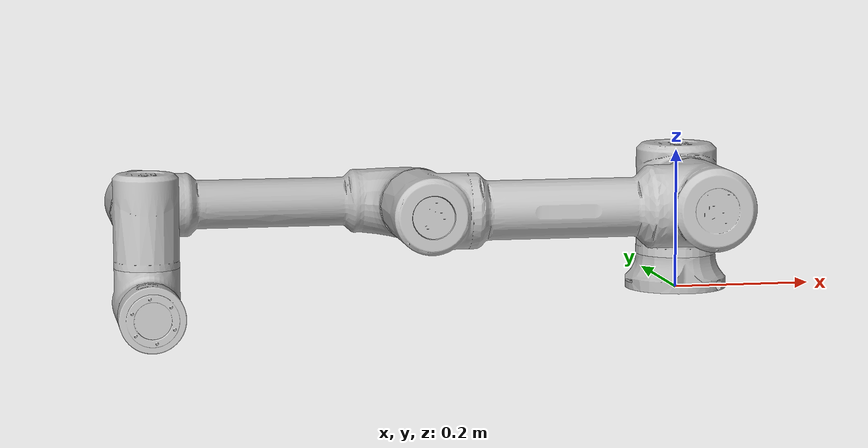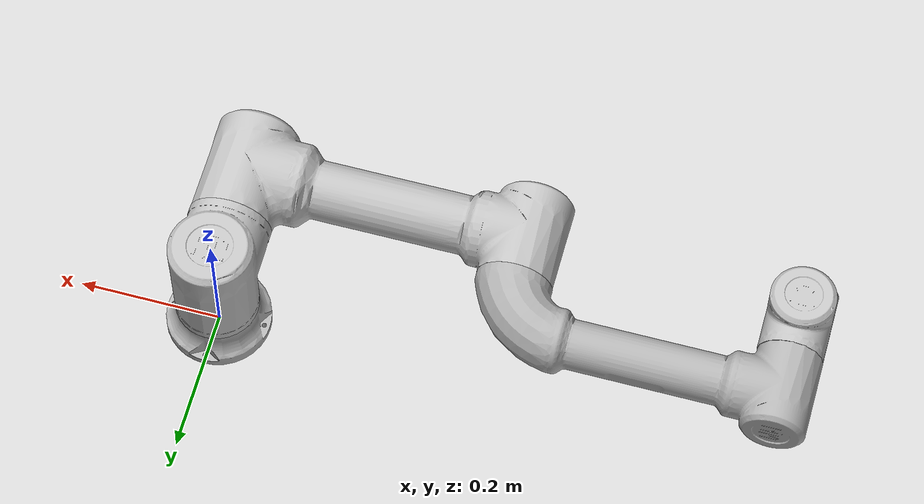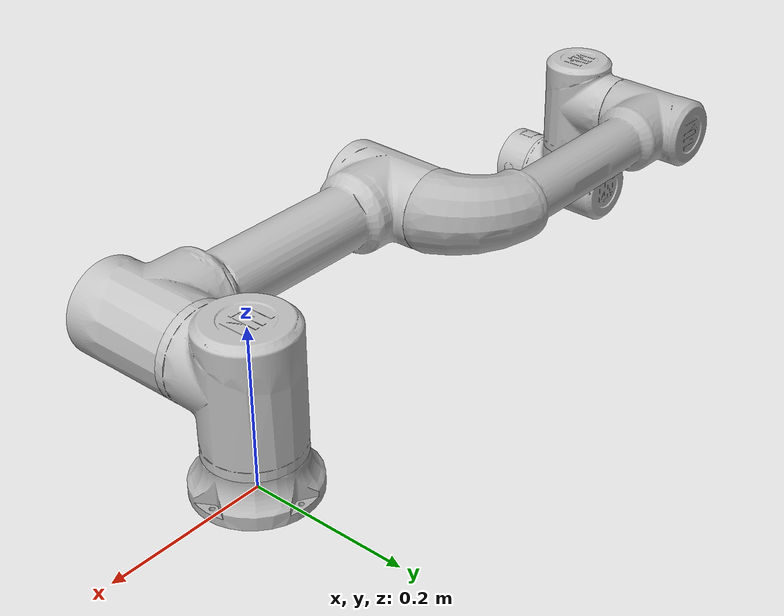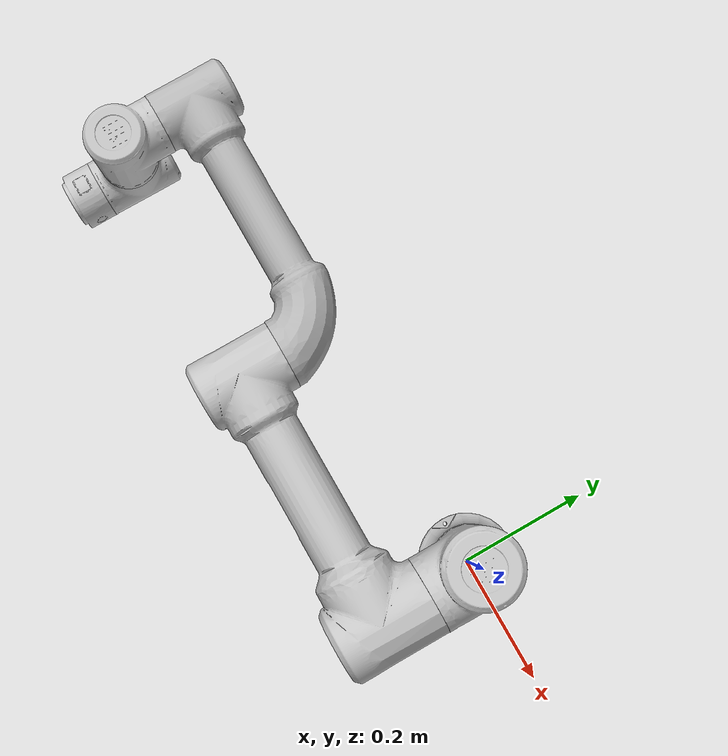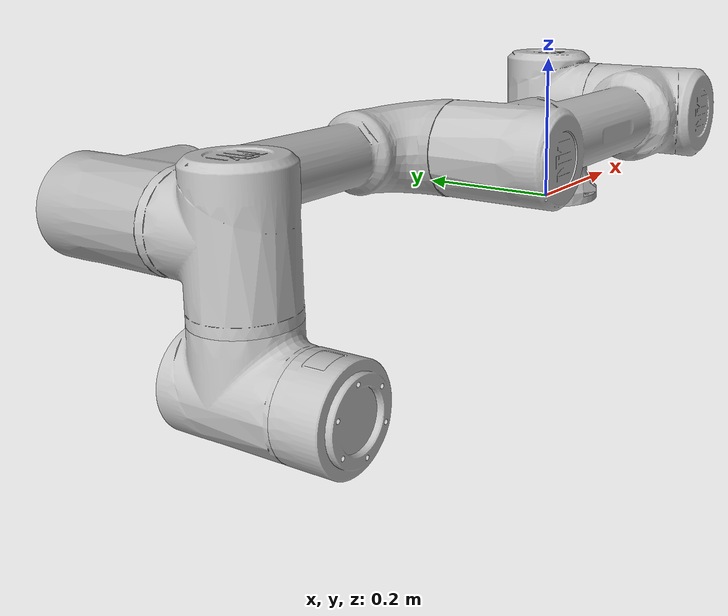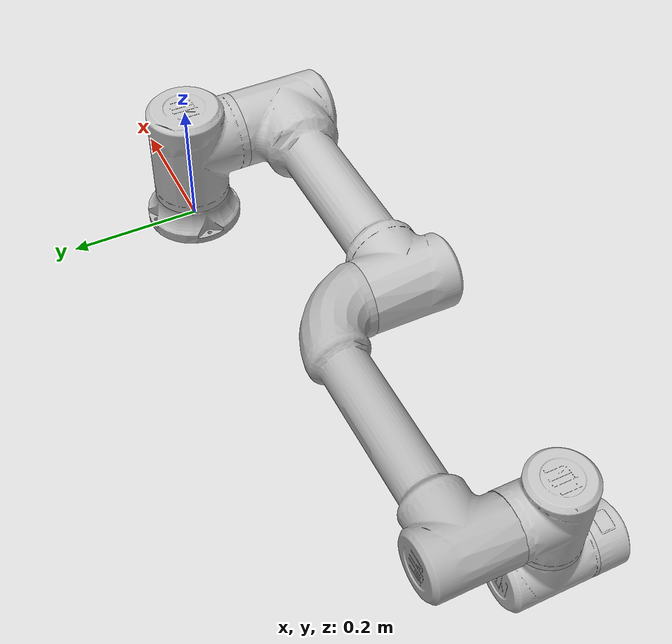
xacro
<?xml version="1.0"?>
<robot xmlns:xacro="http://www.ros.org/wiki/xacro" name="iimt">
  <xacro:arg name="robot_type" default="5"/>
  <xacro:arg name="robot_ip" default="192.168.50.148"/>
  <xacro:arg name="hardware_parameters_file" default=""/>
  <xacro:arg name="sdk_library_path" default=""/>
  <xacro:arg name="controller_update_rate" default="125"/>
  <xacro:arg name="enable_motion" default="false"/>
  <xacro:arg name="use_mock_hardware" default="false"/>
  <xacro:include filename="$(find iimt_ros2_description)/urdf/iimt$(arg robot_type).urdf"/>
  <xacro:property name="initial" value="${xacro.load_yaml('$(find iimt_ros2_description)/config/initial_positions.yaml')['initial_positions']}"/>
  <xacro:macro name="controlled_joint" params="joint_name">
    <joint name="${joint_name}">
      <command_interface name="position"/>
      <state_interface name="position">
        <!-- Real hardware reads encoders; initial_value is only for explicit mock mode. -->
        <param name="initial_value">${initial[joint_name]}</param>
      </state_interface>
      <state_interface name="velocity"/>
    </joint>
  </xacro:macro>
  <ros2_control name="IimtSystem" type="system">
    <hardware>
      <xacro:if value="$(arg use_mock_hardware)">
        <plugin>mock_components/GenericSystem</plugin>
      </xacro:if>
      <xacro:unless value="$(arg use_mock_hardware)">
        <plugin>iimt_ros2_control/IimtSystem</plugin>
        <param name="hardware_parameters_file">$(arg hardware_parameters_file)</param>
        <param name="robot_ip">$(arg robot_ip)</param>
        <param name="sdk_library_path">$(arg sdk_library_path)</param>
        <param name="enable_motion">$(arg enable_motion)</param>
        <param name="controller_update_rate">$(arg controller_update_rate)</param>
      </xacro:unless>
    </hardware>
    <xacro:controlled_joint joint_name="shoulder_joint"/>
    <xacro:controlled_joint joint_name="upper_arm_joint"/>
    <xacro:controlled_joint joint_name="forearm_joint"/>
    <xacro:controlled_joint joint_name="wrist_1_joint"/>
    <xacro:controlled_joint joint_name="wrist_2_joint"/>
    <xacro:controlled_joint joint_name="wrist_3_joint"/>
  </ros2_control>
</robot>

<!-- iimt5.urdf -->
<robot
  name="iimt5">
  <link
    name="base_link">
    <inertial>
      <origin
        xyz="-0.00059464 -0.00060418 0.020571"
        rpy="0 0 0" />
      <mass
        value="1.1424" />
      <inertia
        ixx="0.0019632"
        ixy="2.3301E-05"
        ixz="-8.7193E-06"
        iyy="0.0019628"
        iyz="-8.9679E-06"
        izz="0.0033635" />
    </inertial>
    <visual>
      <origin
        xyz="0 0 0"
        rpy="0 0 0" />
      <geometry>
        <mesh
          filename="package://iimt_ros2_description/meshes/iimt5/visual/base_link.dae" />
      </geometry>
      <material
        name="">
        <color
          rgba="0.69804 0.69804 0.69804 1" />
      </material>
    </visual>
    <collision>
      <origin
        xyz="0 0 0"
        rpy="0 0 0" />
      <geometry>
        <mesh
          filename="package://iimt_ros2_description/meshes/iimt5/collision/base_link.stl" />
      </geometry>
    </collision>
  </link>
  <link
    name="shoulder_link">
    <inertial>
      <origin
        xyz="0.00023806 -0.0054616 -0.027849"
        rpy="0 0 0" />
      <mass
        value="4.7527" />
      <inertia
        ixx="0.0043887"
        ixy="-8.5565E-06"
        ixz="-8.1251E-06"
        iyy="0.0043683"
        iyz="0.00023986"
        izz="0.0061208" />
    </inertial>
    <visual>
      <origin
        xyz="0 0 0"
        rpy="0 0 0" />
      <geometry>
        <mesh
          filename="package://iimt_ros2_description/meshes/iimt5/visual/shoulder_link.dae" />
      </geometry>
      <material
        name="">
        <color
          rgba="0.75294 0.75294 0.75294 1" />
      </material>
    </visual>
    <collision>
      <origin
        xyz="0 0 0"
        rpy="0 0 0" />
      <geometry>
        <mesh
          filename="package://iimt_ros2_description/meshes/iimt5/collision/shoulder_link.stl" />
      </geometry>
    </collision>
  </link>
  <joint
    name="shoulder_joint"
    type="revolute">
    <origin
      xyz="0 0 0.139"
      rpy="0 0 0" />
    <parent
      link="base_link" />
    <child
      link="shoulder_link" />
    <axis
      xyz="0 0 1" />
    <limit
      lower="-6.2832"
      upper="6.2832"
      effort="130"
      velocity="3.14" />
  </joint>
  <link
    name="upper_arm_link">
    <inertial>
      <origin
        xyz="-0.16754 -1.0507E-05 0.13275"
        rpy="0 0 0" />
      <mass
        value="9.0173" />
      <inertia
        ixx="0.0082644"
        ixy="5.4662E-06"
        ixz="6.8958E-05"
        iyy="0.015153"
        iyz="-2.8896E-06"
        izz="0.017899" />
    </inertial>
    <visual>
      <origin
        xyz="0 0 0"
        rpy="0 0 0" />
      <geometry>
        <mesh
          filename="package://iimt_ros2_description/meshes/iimt5/visual/upper_arm_link.dae" />
      </geometry>
      <material
        name="">
        <color
          rgba="0.75294 0.75294 0.75294 1" />
      </material>
    </visual>
    <collision>
      <origin
        xyz="0 0 0"
        rpy="0 0 0" />
      <geometry>
        <mesh
          filename="package://iimt_ros2_description/meshes/iimt5/collision/upper_arm_link.stl" />
      </geometry>
    </collision>
  </link>
  <joint
    name="upper_arm_joint"
    type="revolute">
    <origin
      xyz="0 0 0"
      rpy="1.5708 0 0" />
    <parent
      link="shoulder_link" />
    <child
      link="upper_arm_link" />
    <axis
      xyz="0 0 1" />
    <limit
      lower="-2.6167"
      upper="2.6167"
      effort="156"
      velocity="2.6167" />
  </joint>
  <link
    name="forearm_link">
    <inertial>
      <origin
        xyz="-0.26237 -0.00025322 0.032714"
        rpy="0 0 0" />
      <mass
        value="3.2477" />
      <inertia
        ixx="0.0030652"
        ixy="-8.0411E-07"
        ixz="-0.0014119"
        iyy="0.018146"
        iyz="-4.9842E-06"
        izz="0.018357" />
    </inertial>
    <visual>
      <origin
        xyz="0 0 0"
        rpy="0 0 0" />
      <geometry>
        <mesh
          filename="package://iimt_ros2_description/meshes/iimt5/visual/fore_arm_link.dae" />
      </geometry>
      <material
        name="">
        <color
          rgba="0.69804 0.69804 0.69804 1" />
      </material>
    </visual>
    <collision>
      <origin
        xyz="0 0 0"
        rpy="0 0 0" />
      <geometry>
        <mesh
          filename="package://iimt_ros2_description/meshes/iimt5/collision/fore_arm_link.stl" />
      </geometry>
    </collision>
  </link>
  <joint
    name="forearm_joint"
    type="revolute">
    <origin
      xyz="-0.3945 0 0"
      rpy="0 0 0" />
    <parent
      link="upper_arm_link" />
    <child
      link="forearm_link" />
    <axis
      xyz="0 0 1" />
    <limit
      lower="-2.8783"
      upper="2.8783"
      effort="95"
      velocity="3.14" />
  </joint>
  <link
    name="wrist_1_link">
    <inertial>
      <origin
        xyz="-0.00045661 -0.018467 -0.0060117"
        rpy="0 0 0" />
      <mass
        value="1.7863" />
      <inertia
        ixx="0.0011898"
        ixy="5.178E-06"
        ixz="2.3072E-06"
        iyy="0.0015106"
        iyz="0.00010468"
        izz="0.0011292" />
    </inertial>
    <visual>
      <origin
        xyz="0 0 0"
        rpy="0 0 0" />
      <geometry>
        <mesh
          filename="package://iimt_ros2_description/meshes/iimt5/visual/wrist_1_link.dae" />
      </geometry>
      <material
        name="">
        <color
          rgba="0.75294 0.75294 0.75294 1" />
      </material>
    </visual>
    <collision>
      <origin
        xyz="0 0 0"
        rpy="0 0 0" />
      <geometry>
        <mesh
          filename="package://iimt_ros2_description/meshes/iimt5/collision/wrist_1_link.stl" />
      </geometry>
    </collision>
  </link>
  <joint
    name="wrist_1_joint"
    type="revolute">
    <origin
      xyz="-0.381 0 0.143"
      rpy="0 0 0" />
    <parent
      link="forearm_link" />
    <child
      link="wrist_1_link" />
    <axis
      xyz="0 0 1" />
    <limit
      lower="-3.0528"
      upper="3.0528"
      effort="35"
      velocity="3.14" />
  </joint>
  <link
    name="wrist_2_link">
    <inertial>
      <origin
        xyz="0.00045661 0.018467 -0.0060117"
        rpy="0 0 0" />
      <mass
        value="1.7863" />
      <inertia
        ixx="0.0011898"
        ixy="5.178E-06"
        ixz="-2.3072E-06"
        iyy="0.0015106"
        iyz="-0.00010468"
        izz="0.0011292" />
    </inertial>
    <visual>
      <origin
        xyz="0 0 0"
        rpy="0 0 0" />
      <geometry>
        <mesh
          filename="package://iimt_ros2_description/meshes/iimt5/visual/wrist_2_link.dae" />
      </geometry>
      <material
        name="">
        <color
          rgba="0.75294 0.75294 0.75294 1" />
      </material>
    </visual>
    <collision>
      <origin
        xyz="0 0 0"
        rpy="0 0 0" />
      <geometry>
        <mesh
          filename="package://iimt_ros2_description/meshes/iimt5/collision/wrist_2_link.stl" />
      </geometry>
    </collision>
  </link>
  <joint
    name="wrist_2_joint"
    type="revolute">
    <origin
      xyz="0 -0.1245 0"
      rpy="1.5708 0 0" />
    <parent
      link="wrist_1_link" />
    <child
      link="wrist_2_link" />
    <axis
      xyz="0 0 1" />
    <limit
      lower="-3.0528"
      upper="3.0528"
      effort="35"
      velocity="3.14" />
  </joint>
  <link
    name="wrist_3_link">
    <inertial>
      <origin
        xyz="-2.766E-05 2.1119E-05 -0.01581"
        rpy="0 0 0" />
      <mass
        value="0.42423" />
      <inertia
        ixx="0.00031444"
        ixy="1.1817E-07"
        ixz="8.2188E-09"
        iyy="0.00029777"
        iyz="-4.0228E-08"
        izz="0.00049472" />
    </inertial>
    <visual>
      <origin
        xyz="0 0 0"
        rpy="0 0 0" />
      <geometry>
        <mesh
          filename="package://iimt_ros2_description/meshes/iimt5/visual/wrist_3_link.dae" />
      </geometry>
      <material
        name="">
        <color
          rgba="0.75294 0.75294 0.75294 1" />
      </material>
    </visual>
    <collision>
      <origin
        xyz="0 0 0"
        rpy="0 0 0" />
      <geometry>
        <mesh
          filename="package://iimt_ros2_description/meshes/iimt5/collision/wrist_3_link.stl" />
      </geometry>
    </collision>
  </link>
  <joint
    name="wrist_3_joint"
    type="revolute">
    <origin
      xyz="0 0.103 0"
      rpy="-1.5708 0 0" />
    <parent
      link="wrist_2_link" />
    <child
      link="wrist_3_link" />
    <axis
      xyz="0 0 -1" />
    <limit
      lower="-6.2832"
      upper="6.2832"
      effort="35"
      velocity="3.14" />
  </joint>
</robot>
